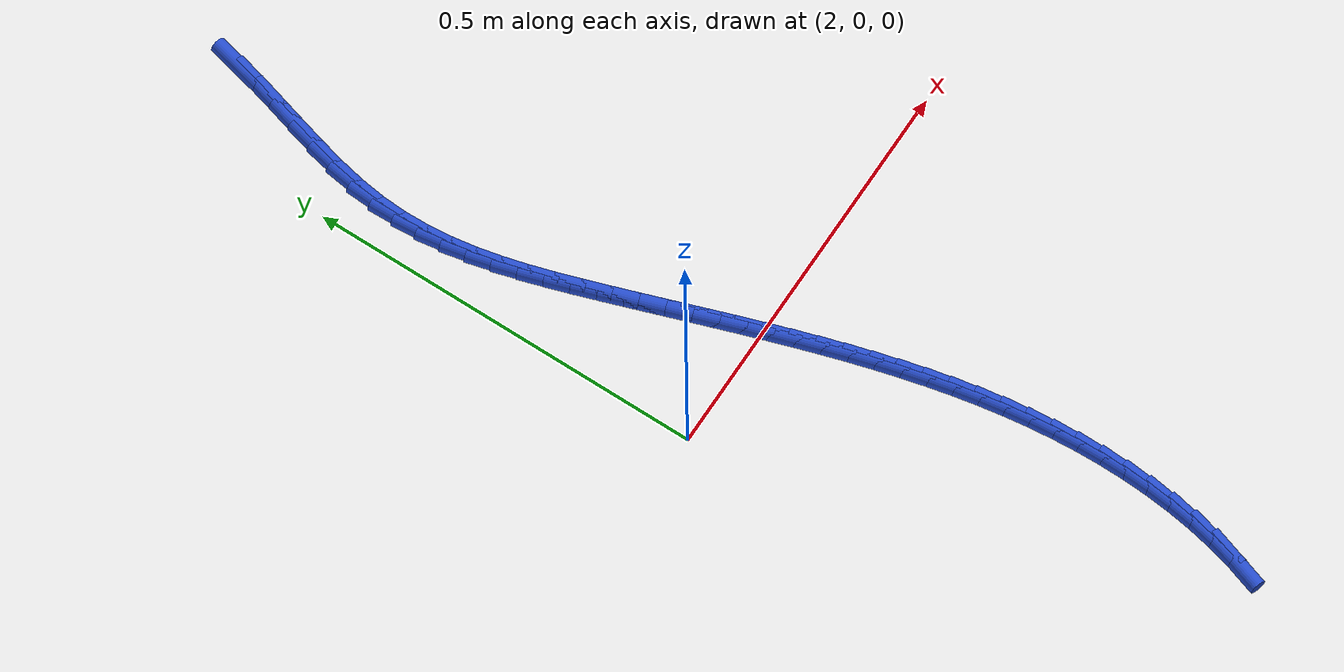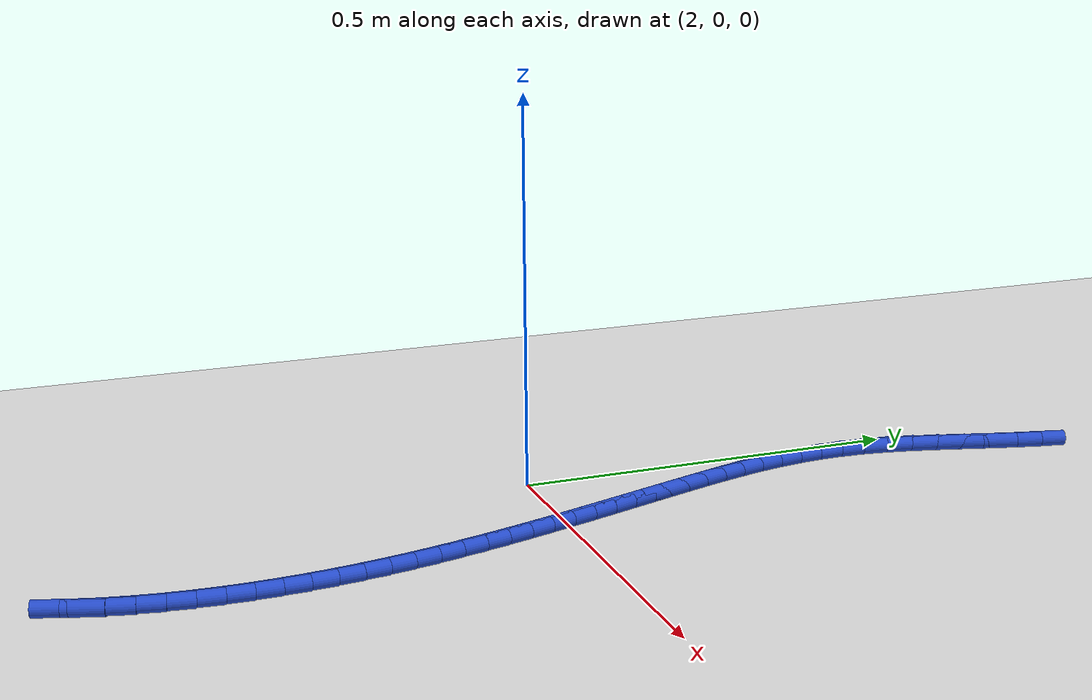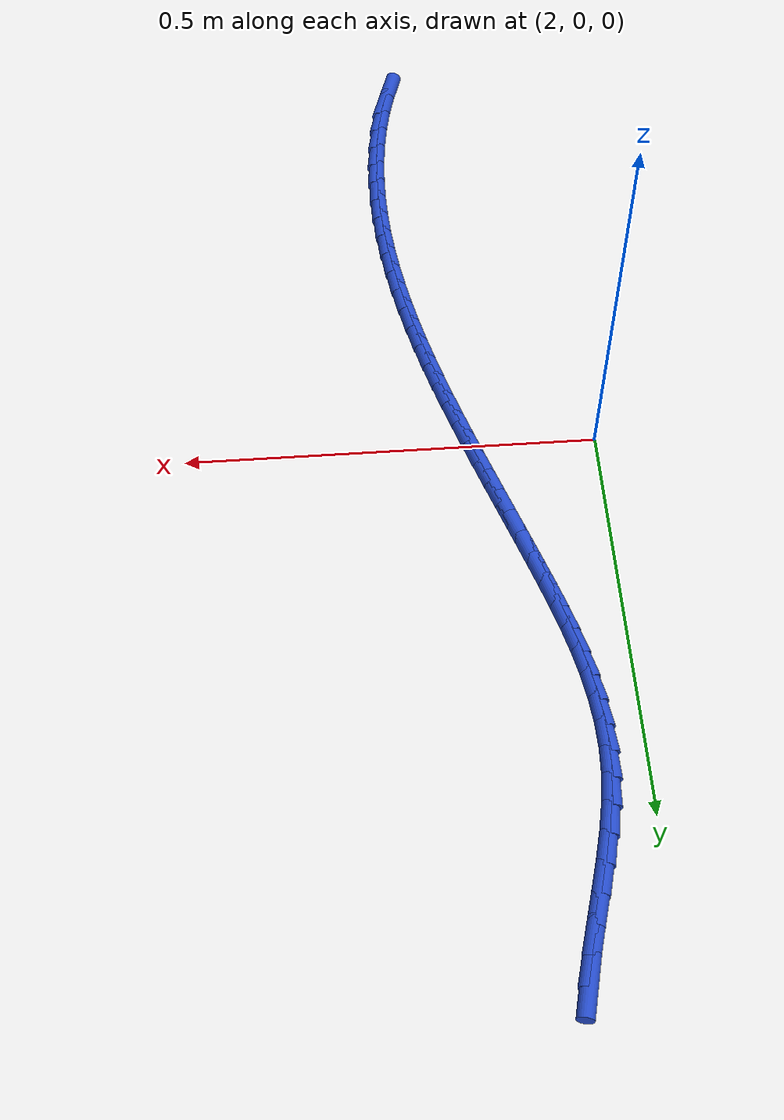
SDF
<sdf version="1.6">
 <world name="default">
  <model name="ground_plane">
   <static>1</static>
   <link name="link">
    <collision name="collision">
     <geometry><plane><normal>0 0 1</normal><size>100 100</size></plane></geometry>
     <surface><friction><ode><mu>100</mu><mu2>50</mu2></ode></friction></surface>
    </collision>
    <visual name="visual">
     <cast_shadows>0</cast_shadows>
     <geometry><plane><normal>0 0 1</normal><size>100 100</size></plane></geometry>
     <material>
      <script><uri>file://media/materials/scripts/gazebo.material</uri><name>Gazebo/WhiteGlow</name></script>
     </material>
    </visual>
   </link>
  </model>
  <model name="line">
   <link name="link_103">
    <pose>2.0997173634638844 0.6839240107079674 0.01 0 1.57 1.3420136995592487</pose>
    <collision name="collision">
     <geometry><cylinder><radius>0.01</radius><length>0.08</length></cylinder></geometry>
    </collision>
    <visual name="visual">
     <material>
      <script><name>Gazebo/Blue</name><uri>file://media/materials/scripts/gazebo.material</uri></script>
     </material>
     <geometry><cylinder><radius>0.01</radius><length>0.08</length></cylinder></geometry>
    </visual>
   </link>
   <link name="link_104">
    <pose>2.0923646492229313 0.6523482724665608 0.01 0 1.57 1.30859031950868</pose>
    <collision name="collision">
     <geometry><cylinder><radius>0.01</radius><length>0.08</length></cylinder></geometry>
    </collision>
    <visual name="visual">
     <material>
      <script><name>Gazebo/Blue</name><uri>file://media/materials/scripts/gazebo.material</uri></script>
     </material>
     <geometry><cylinder><radius>0.01</radius><length>0.08</length></cylinder></geometry>
    </visual>
   </link>
   <link name="link_105">
    <pose>2.0836311057769166 0.6198071777390717 0.01 0 1.57 1.2959509393280733</pose>
    <collision name="collision">
     <geometry><cylinder><radius>0.01</radius><length>0.08</length></cylinder></geometry>
    </collision>
    <visual name="visual">
     <material>
      <script><name>Gazebo/Blue</name><uri>file://media/materials/scripts/gazebo.material</uri></script>
     </material>
     <geometry><cylinder><radius>0.01</radius><length>0.08</length></cylinder></geometry>
    </visual>
   </link>
   <link name="link_106">
    <pose>2.0742641105906965 0.5865887272987403 0.01 0 1.57 1.3021279787718665</pose>
    <collision name="collision">
     <geometry><cylinder><radius>0.01</radius><length>0.08</length></cylinder></geometry>
    </collision>
    <visual name="visual">
     <material>
      <script><name>Gazebo/Blue</name><uri>file://media/materials/scripts/gazebo.material</uri></script>
     </material>
     <geometry><cylinder><radius>0.01</radius><length>0.08</length></cylinder></geometry>
    </visual>
   </link>
   <link name="link_107">
    <pose>2.0650110411291265 0.5529809219188091 0.01 0 1.57 1.3268097462926376</pose>
    <collision name="collision">
     <geometry><cylinder><radius>0.01</radius><length>0.08</length></cylinder></geometry>
    </collision>
    <visual name="visual">
     <material>
      <script><name>Gazebo/Blue</name><uri>file://media/materials/scripts/gazebo.material</uri></script>
     </material>
     <geometry><cylinder><radius>0.01</radius><length>0.08</length></cylinder></geometry>
    </visual>
   </link>
   <link name="link_108">
    <pose>2.0566192748570615 0.5192717623725196 0.01 0 1.57 1.3711477607284532</pose>
    <collision name="collision">
     <geometry><cylinder><radius>0.01</radius><length>0.08</length></cylinder></geometry>
    </collision>
    <visual name="visual">
     <material>
      <script><name>Gazebo/Blue</name><uri>file://media/materials/scripts/gazebo.material</uri></script>
     </material>
     <geometry><cylinder><radius>0.01</radius><length>0.08</length></cylinder></geometry>
    </visual>
   </link>
   <link name="link_109">
    <pose>2.0498361892393566 0.48574924943311315 0.01 0 1.57 1.4375032261748242</pose>
    <collision name="collision">
     <geometry><cylinder><radius>0.01</radius><length>0.08</length></cylinder></geometry>
    </collision>
    <visual name="visual">
     <material>
      <script><name>Gazebo/Blue</name><uri>file://media/materials/scripts/gazebo.material</uri></script>
     </material>
     <geometry><cylinder><radius>0.01</radius><length>0.08</length></cylinder></geometry>
    </visual>
   </link>
   <link name="link_110">
    <pose>2.0454046495676232 0.4526998013971238 0.01 0 1.57 1.5184571439282022</pose>
    <collision name="collision">
     <geometry><cylinder><radius>0.01</radius><length>0.08</length></cylinder></geometry>
    </collision>
    <visual name="visual">
     <material>
      <script><name>Gazebo/Blue</name><uri>file://media/materials/scripts/gazebo.material</uri></script>
     </material>
     <geometry><cylinder><radius>0.01</radius><length>0.08</length></cylinder></geometry>
    </visual>
   </link>
   <link name="link_111">
    <pose>2.043706440215917 0.4202832008778312 0.01 0 1.57 -1.5457403432182184</pose>
    <collision name="collision">
     <geometry><cylinder><radius>0.01</radius><length>0.08</length></cylinder></geometry>
    </collision>
    <visual name="visual">
     <material>
      <script><name>Gazebo/Blue</name><uri>file://media/materials/scripts/gazebo.material</uri></script>
     </material>
     <geometry><cylinder><radius>0.01</radius><length>0.08</length></cylinder></geometry>
    </visual>
   </link>
   <link name="link_112">
    <pose>2.0445044157128383 0.38844216389747144 0.01 0 1.57 -1.4754956125029306</pose>
    <collision name="collision">
     <geometry><cylinder><radius>0.01</radius><length>0.08</length></cylinder></geometry>
    </collision>
    <visual name="visual">
     <material>
      <script><name>Gazebo/Blue</name><uri>file://media/materials/scripts/gazebo.material</uri></script>
     </material>
     <geometry><cylinder><radius>0.01</radius><length>0.08</length></cylinder></geometry>
    </visual>
   </link>
   <link name="link_113">
    <pose>2.0475006060085787 0.35709807452283404 0.01 0 1.57 -1.4137710698593273</pose>
    <collision name="collision">
     <geometry><cylinder><radius>0.01</radius><length>0.08</length></cylinder></geometry>
    </collision>
    <visual name="visual">
     <material>
      <script><name>Gazebo/Blue</name><uri>file://media/materials/scripts/gazebo.material</uri></script>
     </material>
     <geometry><cylinder><radius>0.01</radius><length>0.08</length></cylinder></geometry>
    </visual>
   </link>
   <link name="link_114">
    <pose>2.0523970410533297 0.32617231682070924 0.01 0 1.57 -1.3614367158256167</pose>
    <collision name="collision">
     <geometry><cylinder><radius>0.01</radius><length>0.08</length></cylinder></geometry>
    </collision>
    <visual name="visual">
     <material>
      <script><name>Gazebo/Blue</name><uri>file://media/materials/scripts/gazebo.material</uri></script>
     </material>
     <geometry><cylinder><radius>0.01</radius><length>0.08</length></cylinder></geometry>
    </visual>
   </link>
   <link name="link_115">
    <pose>2.0588957507972814 0.2955862748578866 0.01 0 1.57 -1.318946383016444</pose>
    <collision name="collision">
     <geometry><cylinder><radius>0.01</radius><length>0.08</length></cylinder></geometry>
    </collision>
    <visual name="visual">
     <material>
      <script><name>Gazebo/Blue</name><uri>file://media/materials/scripts/gazebo.material</uri></script>
     </material>
     <geometry><cylinder><radius>0.01</radius><length>0.08</length></cylinder></geometry>
    </visual>
   </link>
   <link name="link_116">
    <pose>2.0666987651906257 0.2652613327011563 0.01 0 1.57 -1.2864581133114155</pose>
    <collision name="collision">
     <geometry><cylinder><radius>0.01</radius><length>0.08</length></cylinder></geometry>
    </collision>
    <visual name="visual">
     <material>
      <script><name>Gazebo/Blue</name><uri>file://media/materials/scripts/gazebo.material</uri></script>
     </material>
     <geometry><cylinder><radius>0.01</radius><length>0.08</length></cylinder></geometry>
    </visual>
   </link>
   <link name="link_117">
    <pose>2.075508114183551 0.23511887441730794 0.01 0 1.57 -1.2639538093290885</pose>
    <collision name="collision">
     <geometry><cylinder><radius>0.01</radius><length>0.08</length></cylinder></geometry>
    </collision>
    <visual name="visual">
     <material>
      <script><name>Gazebo/Blue</name><uri>file://media/materials/scripts/gazebo.material</uri></script>
     </material>
     <geometry><cylinder><radius>0.01</radius><length>0.08</length></cylinder></geometry>
    </visual>
   </link>
   <link name="link_118">
    <pose>2.085025827726251 0.2050802840731316 0.01 0 1.57 -1.2512488333317888</pose>
    <collision name="collision">
     <geometry><cylinder><radius>0.01</radius><length>0.08</length></cylinder></geometry>
    </collision>
    <visual name="visual">
     <material>
      <script><name>Gazebo/Blue</name><uri>file://media/materials/scripts/gazebo.material</uri></script>
     </material>
     <geometry><cylinder><radius>0.01</radius><length>0.08</length></cylinder></geometry>
    </visual>
   </link>
   <link name="link_119">
    <pose>2.0949565675103763 0.1750678285346435 0.01 0 1.57 -1.2451090814136023</pose>
    <collision name="collision">
     <geometry><cylinder><radius>0.01</radius><length>0.08</length></cylinder></geometry>
    </collision>
    <visual name="visual">
     <material>
      <script><name>Gazebo/Blue</name><uri>file://media/materials/scripts/gazebo.material</uri></script>
     </material>
     <geometry><cylinder><radius>0.01</radius><length>0.08</length></cylinder></geometry>
    </visual>
   </link>
   <link name="link_120">
    <pose>2.105098951753863 0.14503529172602608 0.01 0 1.57 -1.2415715711461592</pose>
    <collision name="collision">
     <geometry><cylinder><radius>0.01</radius><length>0.08</length></cylinder></geometry>
    </collision>
    <visual name="visual">
     <material>
      <script><name>Gazebo/Blue</name><uri>file://media/materials/scripts/gazebo.material</uri></script>
     </material>
     <geometry><cylinder><radius>0.01</radius><length>0.08</length></cylinder></geometry>
    </visual>
   </link>
   <link name="link_121">
    <pose>2.1153690280467385 0.11497584843122294 0.01 0 1.57 -1.2403679385481212</pose>
    <collision name="collision">
     <geometry><cylinder><radius>0.01</radius><length>0.08</length></cylinder></geometry>
    </collision>
    <visual name="visual">
     <material>
      <script><name>Gazebo/Blue</name><uri>file://media/materials/scripts/gazebo.material</uri></script>
     </material>
     <geometry><cylinder><radius>0.01</radius><length>0.08</length></cylinder></geometry>
    </visual>
   </link>
   <link name="link_122">
    <pose>2.1256902435974463 0.08488515558431017 0.01 0 1.57 -1.2414857160992612</pose>
    <collision name="collision">
     <geometry><cylinder><radius>0.01</radius><length>0.08</length></cylinder></geometry>
    </collision>
    <visual name="visual">
     <material>
      <script><name>Gazebo/Blue</name><uri>file://media/materials/scripts/gazebo.material</uri></script>
     </material>
     <geometry><cylinder><radius>0.01</radius><length>0.08</length></cylinder></geometry>
    </visual>
   </link>
   <link name="link_123">
    <pose>2.135986045614431 0.05475887011936356 0.01 0 1.57 -1.244921497252217</pose>
    <collision name="collision">
     <geometry><cylinder><radius>0.01</radius><length>0.08</length></cylinder></geometry>
    </collision>
    <visual name="visual">
     <material>
      <script><name>Gazebo/Blue</name><uri>file://media/materials/scripts/gazebo.material</uri></script>
     </material>
     <geometry><cylinder><radius>0.01</radius><length>0.08</length></cylinder></geometry>
    </visual>
   </link>
   <link name="link_124">
    <pose>2.146179881306137 0.024592648970458823 0.01 0 1.57 -1.2506806977109228</pose>
    <collision name="collision">
     <geometry><cylinder><radius>0.01</radius><length>0.08</length></cylinder></geometry>
    </collision>
    <visual name="visual">
     <material>
      <script><name>Gazebo/Blue</name><uri>file://media/materials/scripts/gazebo.material</uri></script>
     </material>
     <geometry><cylinder><radius>0.01</radius><length>0.08</length></cylinder></geometry>
    </visual>
   </link>
   <link name="link_125">
    <pose>2.156195197881008 -0.005617850928328278 0.01 0 1.57 -1.2587770245461283</pose>
    <collision name="collision">
     <geometry><cylinder><radius>0.01</radius><length>0.08</length></cylinder></geometry>
    </collision>
    <visual name="visual">
     <material>
      <script><name>Gazebo/Blue</name><uri>file://media/materials/scripts/gazebo.material</uri></script>
     </material>
     <geometry><cylinder><radius>0.01</radius><length>0.08</length></cylinder></geometry>
    </visual>
   </link>
   <link name="link_126">
    <pose>2.1659554425474887 -0.035876972642922 0.01 0 1.57 -1.2692316330898732</pose>
    <collision name="collision">
     <geometry><cylinder><radius>0.01</radius><length>0.08</length></cylinder></geometry>
    </collision>
    <visual name="visual">
     <material>
      <script><name>Gazebo/Blue</name><uri>file://media/materials/scripts/gazebo.material</uri></script>
     </material>
     <geometry><cylinder><radius>0.01</radius><length>0.08</length></cylinder></geometry>
    </visual>
   </link>
   <link name="link_127">
    <pose>2.175384062514023 -0.06618905923924656 0.01 0 1.57 -1.2820719351132892</pose>
    <collision name="collision">
     <geometry><cylinder><radius>0.01</radius><length>0.08</length></cylinder></geometry>
    </collision>
    <visual name="visual">
     <material>
      <script><name>Gazebo/Blue</name><uri>file://media/materials/scripts/gazebo.material</uri></script>
     </material>
     <geometry><cylinder><radius>0.01</radius><length>0.08</length></cylinder></geometry>
    </visual>
   </link>
   <link name="link_128">
    <pose>2.1844045049890553 -0.0965584537832262 0.01 0 1.57 -1.2973300077235919</pose>
    <collision name="collision">
     <geometry><cylinder><radius>0.01</radius><length>0.08</length></cylinder></geometry>
    </collision>
    <visual name="visual">
     <material>
      <script><name>Gazebo/Blue</name><uri>file://media/materials/scripts/gazebo.material</uri></script>
     </material>
     <geometry><cylinder><radius>0.01</radius><length>0.08</length></cylinder></geometry>
    </visual>
   </link>
   <link name="link_129">
    <pose>2.19294021718103 -0.12698949934078524 0.01 0 1.57 -1.315040542118799</pose>
    <collision name="collision">
     <geometry><cylinder><radius>0.01</radius><length>0.08</length></cylinder></geometry>
    </collision>
    <visual name="visual">
     <material>
      <script><name>Gazebo/Blue</name><uri>file://media/materials/scripts/gazebo.material</uri></script>
     </material>
     <geometry><cylinder><radius>0.01</radius><length>0.08</length></cylinder></geometry>
    </visual>
   </link>
   <link name="link_130">
    <pose>2.2009146462983904 -0.15748653897784776 0.01 0 1.57 -1.3352382669688658</pose>
    <collision name="collision">
     <geometry><cylinder><radius>0.01</radius><length>0.08</length></cylinder></geometry>
    </collision>
    <visual name="visual">
     <material>
      <script><name>Gazebo/Blue</name><uri>file://media/materials/scripts/gazebo.material</uri></script>
     </material>
     <geometry><cylinder><radius>0.01</radius><length>0.08</length></cylinder></geometry>
    </visual>
   </link>
   <link name="link_131">
    <pose>2.2082512395495817 -0.1880539157603382 0.01 0 1.57 -1.3579547857814864</pose>
    <collision name="collision">
     <geometry><cylinder><radius>0.01</radius><length>0.08</length></cylinder></geometry>
    </collision>
    <visual name="visual">
     <material>
      <script><name>Gazebo/Blue</name><uri>file://media/materials/scripts/gazebo.material</uri></script>
     </material>
     <geometry><cylinder><radius>0.01</radius><length>0.08</length></cylinder></geometry>
    </visual>
   </link>
   <link name="link_132">
    <pose>2.2148734441430484 -0.21869597275418073 0.01 0 1.57 -1.383214785057076</pose>
    <collision name="collision">
     <geometry><cylinder><radius>0.01</radius><length>0.08</length></cylinder></geometry>
    </collision>
    <visual name="visual">
     <material>
      <script><name>Gazebo/Blue</name><uri>file://media/materials/scripts/gazebo.material</uri></script>
     </material>
     <geometry><cylinder><radius>0.01</radius><length>0.08</length></cylinder></geometry>
    </visual>
   </link>
   <link name="link_133">
    <pose>2.220704707287234 -0.24941705302529965 0.01 0 1.57 -1.4110316048349123</pose>
    <collision name="collision">
     <geometry><cylinder><radius>0.01</radius><length>0.08</length></cylinder></geometry>
    </collision>
    <visual name="visual">
     <material>
      <script><name>Gazebo/Blue</name><uri>file://media/materials/scripts/gazebo.material</uri></script>
     </material>
     <geometry><cylinder><radius>0.01</radius><length>0.08</length></cylinder></geometry>
    </visual>
   </link>
   <link name="link_134">
    <pose>2.225668476190583 -0.28022149963961906 0.01 0 1.57 -1.4414022197304999</pose>
    <collision name="collision">
     <geometry><cylinder><radius>0.01</radius><length>0.08</length></cylinder></geometry>
    </collision>
    <visual name="visual">
     <material>
      <script><name>Gazebo/Blue</name><uri>file://media/materials/scripts/gazebo.material</uri></script>
     </material>
     <geometry><cylinder><radius>0.01</radius><length>0.08</length></cylinder></geometry>
    </visual>
   </link>
   <link name="link_135">
    <pose>2.2296881980615395 -0.31111365566306337 0.01 0 1.57 -1.474301759658767</pose>
    <collision name="collision">
     <geometry><cylinder><radius>0.01</radius><length>0.08</length></cylinder></geometry>
    </collision>
    <visual name="visual">
     <material>
      <script><name>Gazebo/Blue</name><uri>file://media/materials/scripts/gazebo.material</uri></script>
     </material>
     <geometry><cylinder><radius>0.01</radius><length>0.08</length></cylinder></geometry>
    </visual>
   </link>
   <link name="link_136">
    <pose>2.232687320108547 -0.34209786416155674 0.01 0 1.57 -1.5096778045547659</pose>
    <collision name="collision">
     <geometry><cylinder><radius>0.01</radius><length>0.08</length></cylinder></geometry>
    </collision>
    <visual name="visual">
     <material>
      <script><name>Gazebo/Blue</name><uri>file://media/materials/scripts/gazebo.material</uri></script>
     </material>
     <geometry><cylinder><radius>0.01</radius><length>0.08</length></cylinder></geometry>
    </visual>
   </link>
   <link name="link_137">
    <pose>2.234589289540051 -0.3731784682010234 0.01 0 1.57 -1.5474448099797373</pose>
    <collision name="collision">
     <geometry><cylinder><radius>0.01</radius><length>0.08</length></cylinder></geometry>
    </collision>
    <visual name="visual">
     <material>
      <script><name>Gazebo/Blue</name><uri>file://media/materials/scripts/gazebo.material</uri></script>
     </material>
     <geometry><cylinder><radius>0.01</radius><length>0.08</length></cylinder></geometry>
    </visual>
   </link>
   <link name="link_138">
    <pose>2.2353175535644962 -0.4043598108473877 0.01 0 1.57 1.554099501254672</pose>
    <collision name="collision">
     <geometry><cylinder><radius>0.01</radius><length>0.08</length></cylinder></geometry>
    </collision>
    <visual name="visual">
     <material>
      <script><name>Gazebo/Blue</name><uri>file://media/materials/scripts/gazebo.material</uri></script>
     </material>
     <geometry><cylinder><radius>0.01</radius><length>0.08</length></cylinder></geometry>
    </visual>
   </link>
   <link name="link_139">
    <pose>2.234795153059311 -0.4356443180366895 0.01 0 1.57 1.5114759107956632</pose>
    <collision name="collision">
     <geometry><cylinder><radius>0.01</radius><length>0.08</length></cylinder></geometry>
    </collision>
    <visual name="visual">
     <material>
      <script><name>Gazebo/Blue</name><uri>file://media/materials/scripts/gazebo.material</uri></script>
     </material>
     <geometry><cylinder><radius>0.01</radius><length>0.08</length></cylinder></geometry>
    </visual>
   </link>
   <link name="link_140">
    <pose>2.2329340082913496 -0.4669819470177824 0.01 0 1.57 1.4656912676762033</pose>
    <collision name="collision">
     <geometry><cylinder><radius>0.01</radius><length>0.08</length></cylinder></geometry>
    </collision>
    <visual name="visual">
     <material>
      <script><name>Gazebo/Blue</name><uri>file://media/materials/scripts/gazebo.material</uri></script>
     </material>
     <geometry><cylinder><radius>0.01</radius><length>0.08</length></cylinder></geometry>
    </visual>
   </link>
   <link name="link_141">
    <pose>2.2296338331127625 -0.49826506336771387 0.01 0 1.57 1.4164921664638888</pose>
    <collision name="collision">
     <geometry><cylinder><radius>0.01</radius><length>0.08</length></cylinder></geometry>
    </collision>
    <visual name="visual">
     <material>
      <script><name>Gazebo/Blue</name><uri>file://media/materials/scripts/gazebo.material</uri></script>
     </material>
     <geometry><cylinder><radius>0.01</radius><length>0.08</length></cylinder></geometry>
    </visual>
   </link>
   <link name="link_142">
    <pose>2.224793717292862 -0.5293830881482888 0.01 0 1.57 1.3636776769850258</pose>
    <collision name="collision">
     <geometry><cylinder><radius>0.01</radius><length>0.08</length></cylinder></geometry>
    </collision>
    <visual name="visual">
     <material>
      <script><name>Gazebo/Blue</name><uri>file://media/materials/scripts/gazebo.material</uri></script>
     </material>
     <geometry><cylinder><radius>0.01</radius><length>0.08</length></cylinder></geometry>
    </visual>
   </link>
   <link name="link_143">
    <pose>2.2183127506009592 -0.560225442421312 0.01 0 1.57 1.3070973612781414</pose>
    <collision name="collision">
     <geometry><cylinder><radius>0.01</radius><length>0.08</length></cylinder></geometry>
    </collision>
    <visual name="visual">
     <material>
      <script><name>Gazebo/Blue</name><uri>file://media/materials/scripts/gazebo.material</uri></script>
     </material>
     <geometry><cylinder><radius>0.01</radius><length>0.08</length></cylinder></geometry>
    </visual>
   </link>
   <link name="link_144">
    <pose>2.210090022806364 -0.5906815472485877 0.01 0 1.57 1.246585804969285</pose>
    <collision name="collision">
     <geometry><cylinder><radius>0.01</radius><length>0.08</length></cylinder></geometry>
    </collision>
    <visual name="visual">
     <material>
      <script><name>Gazebo/Blue</name><uri>file://media/materials/scripts/gazebo.material</uri></script>
     </material>
     <geometry><cylinder><radius>0.01</radius><length>0.08</length></cylinder></geometry>
    </visual>
   </link>
  </model>
 </world>
</sdf>
